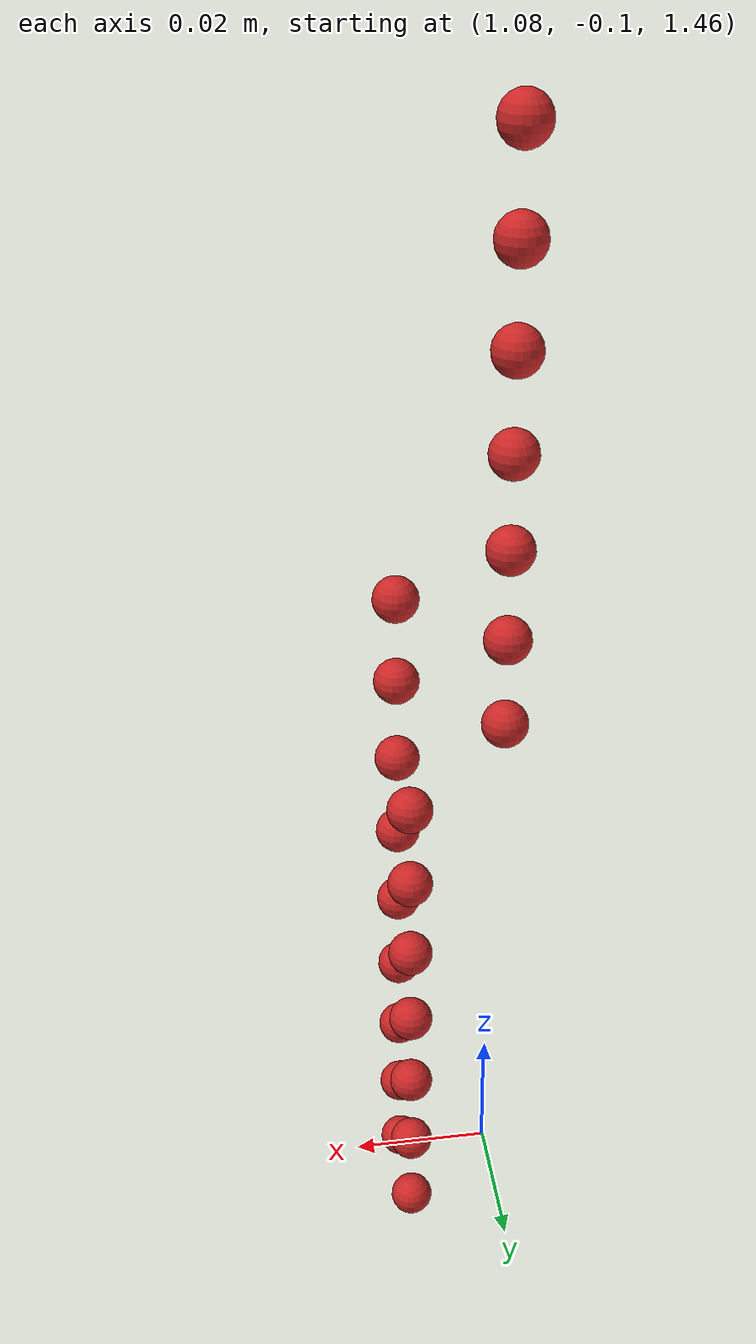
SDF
<sdf version="1.4">
 <world name="default">
  <model name="ground_plane">
   <static>1</static>
   <link name="link">
    <collision name="collision">
     <geometry><plane><normal>0 0 1</normal><size>100 100</size></plane></geometry>
     <surface><friction><ode><mu>100</mu><mu2>50</mu2></ode></friction></surface>
    </collision>
    <visual name="visual">
     <cast_shadows>0</cast_shadows>
     <geometry><plane><normal>0 0 1</normal><size>100 100</size></plane></geometry>
     <material>
      <script><uri>file://media/materials/scripts/gazebo.material</uri><name>Gazebo/Grey</name></script>
     </material>
    </visual>
    <velocity_decay><linear>0</linear><angular>0</angular></velocity_decay>
   </link>
  </model>
  <model name="sphere1">
   <pose>0.546760 -0.048781 0.732288 0 0 0</pose>
   <link name="link">
    <pose>0.546760 -0.048781 0.732288 0 0 0</pose>
    <inertial>
     <mass>0.001</mass>
     <inertia>
      <ixx>0.004</ixx>
      <ixy>0.000000</ixy>
      <ixz>0.000000</ixz>
      <iyy>0.004</iyy>
      <iyz>0.000000</iyz>
      <izz>0.004</izz>
     </inertia>
    </inertial>
    <collision name="collision">
     <surface>
      <contact><ode><kp>10000000000.000000</kp><kd>1</kd></ode></contact>
      <friction><ode><mu>0.01</mu><mu2>0.01</mu2></ode></friction>
     </surface>
     <geometry><sphere><radius>0.003</radius></sphere></geometry>
    </collision>
    <visual name="visual">
     <geometry><sphere><radius>0.003</radius></sphere></geometry>
     <material>
      <script><uri>file://media/materials/scripts/gazebo.material</uri><name>Gazebo/Red</name></script>
     </material>
    </visual>
   </link>
  </model>
  <model name="sphere5">
   <pose>0.546760 -0.042781 0.732288 0 0 0</pose>
   <link name="link">
    <pose>0.546760 -0.042781 0.732288 0 0 0</pose>
    <inertial>
     <mass>0.001</mass>
     <inertia>
      <ixx>0.004</ixx>
      <ixy>0.000000</ixy>
      <ixz>0.000000</ixz>
      <iyy>0.004</iyy>
      <iyz>0.000000</iyz>
      <izz>0.004</izz>
     </inertia>
    </inertial>
    <collision name="collision">
     <surface>
      <contact><ode><kp>10000000000.000000</kp><kd>1</kd></ode></contact>
      <friction><ode><mu>0.01</mu><mu2>0.01</mu2></ode></friction>
     </surface>
     <geometry><sphere><radius>0.003</radius></sphere></geometry>
    </collision>
    <visual name="visual">
     <geometry><sphere><radius>0.003</radius></sphere></geometry>
     <material>
      <script><uri>file://media/materials/scripts/gazebo.material</uri><name>Gazebo/Red</name></script>
     </material>
    </visual>
   </link>
  </model>
  <model name="sphere17">
   <pose>0.546760 -0.048781 0.738288 0 0 0</pose>
   <link name="link">
    <pose>0.546760 -0.048781 0.738288 0 0 0</pose>
    <inertial>
     <mass>0.001</mass>
     <inertia>
      <ixx>0.004</ixx>
      <ixy>0.000000</ixy>
      <ixz>0.000000</ixz>
      <iyy>0.004</iyy>
      <iyz>0.000000</iyz>
      <izz>0.004</izz>
     </inertia>
    </inertial>
    <collision name="collision">
     <surface>
      <contact><ode><kp>10000000000.000000</kp><kd>1</kd></ode></contact>
      <friction><ode><mu>0.01</mu><mu2>0.01</mu2></ode></friction>
     </surface>
     <geometry><sphere><radius>0.003</radius></sphere></geometry>
    </collision>
    <visual name="visual">
     <geometry><sphere><radius>0.003</radius></sphere></geometry>
     <material>
      <script><uri>file://media/materials/scripts/gazebo.material</uri><name>Gazebo/Red</name></script>
     </material>
    </visual>
   </link>
  </model>
  <model name="sphere21">
   <pose>0.546760 -0.042781 0.738288 0 0 0</pose>
   <link name="link">
    <pose>0.546760 -0.042781 0.738288 0 0 0</pose>
    <inertial>
     <mass>0.001</mass>
     <inertia>
      <ixx>0.004</ixx>
      <ixy>0.000000</ixy>
      <ixz>0.000000</ixz>
      <iyy>0.004</iyy>
      <iyz>0.000000</iyz>
      <izz>0.004</izz>
     </inertia>
    </inertial>
    <collision name="collision">
     <surface>
      <contact><ode><kp>10000000000.000000</kp><kd>1</kd></ode></contact>
      <friction><ode><mu>0.01</mu><mu2>0.01</mu2></ode></friction>
     </surface>
     <geometry><sphere><radius>0.003</radius></sphere></geometry>
    </collision>
    <visual name="visual">
     <geometry><sphere><radius>0.003</radius></sphere></geometry>
     <material>
      <script><uri>file://media/materials/scripts/gazebo.material</uri><name>Gazebo/Red</name></script>
     </material>
    </visual>
   </link>
  </model>
  <model name="sphere33">
   <pose>0.546760 -0.048781 0.744288 0 0 0</pose>
   <link name="link">
    <pose>0.546760 -0.048781 0.744288 0 0 0</pose>
    <inertial>
     <mass>0.001</mass>
     <inertia>
      <ixx>0.004</ixx>
      <ixy>0.000000</ixy>
      <ixz>0.000000</ixz>
      <iyy>0.004</iyy>
      <iyz>0.000000</iyz>
      <izz>0.004</izz>
     </inertia>
    </inertial>
    <collision name="collision">
     <surface>
      <contact><ode><kp>10000000000.000000</kp><kd>1</kd></ode></contact>
      <friction><ode><mu>0.01</mu><mu2>0.01</mu2></ode></friction>
     </surface>
     <geometry><sphere><radius>0.003</radius></sphere></geometry>
    </collision>
    <visual name="visual">
     <geometry><sphere><radius>0.003</radius></sphere></geometry>
     <material>
      <script><uri>file://media/materials/scripts/gazebo.material</uri><name>Gazebo/Red</name></script>
     </material>
    </visual>
   </link>
  </model>
  <model name="sphere37">
   <pose>0.546760 -0.042781 0.744288 0 0 0</pose>
   <link name="link">
    <pose>0.546760 -0.042781 0.744288 0 0 0</pose>
    <inertial>
     <mass>0.001</mass>
     <inertia>
      <ixx>0.004</ixx>
      <ixy>0.000000</ixy>
      <ixz>0.000000</ixz>
      <iyy>0.004</iyy>
      <iyz>0.000000</iyz>
      <izz>0.004</izz>
     </inertia>
    </inertial>
    <collision name="collision">
     <surface>
      <contact><ode><kp>10000000000.000000</kp><kd>1</kd></ode></contact>
      <friction><ode><mu>0.01</mu><mu2>0.01</mu2></ode></friction>
     </surface>
     <geometry><sphere><radius>0.003</radius></sphere></geometry>
    </collision>
    <visual name="visual">
     <geometry><sphere><radius>0.003</radius></sphere></geometry>
     <material>
      <script><uri>file://media/materials/scripts/gazebo.material</uri><name>Gazebo/Red</name></script>
     </material>
    </visual>
   </link>
  </model>
  <model name="sphere49">
   <pose>0.546760 -0.048781 0.750288 0 0 0</pose>
   <link name="link">
    <pose>0.546760 -0.048781 0.750288 0 0 0</pose>
    <inertial>
     <mass>0.001</mass>
     <inertia>
      <ixx>0.004</ixx>
      <ixy>0.000000</ixy>
      <ixz>0.000000</ixz>
      <iyy>0.004</iyy>
      <iyz>0.000000</iyz>
      <izz>0.004</izz>
     </inertia>
    </inertial>
    <collision name="collision">
     <surface>
      <contact><ode><kp>10000000000.000000</kp><kd>1</kd></ode></contact>
      <friction><ode><mu>0.01</mu><mu2>0.01</mu2></ode></friction>
     </surface>
     <geometry><sphere><radius>0.003</radius></sphere></geometry>
    </collision>
    <visual name="visual">
     <geometry><sphere><radius>0.003</radius></sphere></geometry>
     <material>
      <script><uri>file://media/materials/scripts/gazebo.material</uri><name>Gazebo/Red</name></script>
     </material>
    </visual>
   </link>
  </model>
  <model name="sphere53">
   <pose>0.546760 -0.042781 0.750288 0 0 0</pose>
   <link name="link">
    <pose>0.546760 -0.042781 0.750288 0 0 0</pose>
    <inertial>
     <mass>0.001</mass>
     <inertia>
      <ixx>0.004</ixx>
      <ixy>0.000000</ixy>
      <ixz>0.000000</ixz>
      <iyy>0.004</iyy>
      <iyz>0.000000</iyz>
      <izz>0.004</izz>
     </inertia>
    </inertial>
    <collision name="collision">
     <surface>
      <contact><ode><kp>10000000000.000000</kp><kd>1</kd></ode></contact>
      <friction><ode><mu>0.01</mu><mu2>0.01</mu2></ode></friction>
     </surface>
     <geometry><sphere><radius>0.003</radius></sphere></geometry>
    </collision>
    <visual name="visual">
     <geometry><sphere><radius>0.003</radius></sphere></geometry>
     <material>
      <script><uri>file://media/materials/scripts/gazebo.material</uri><name>Gazebo/Red</name></script>
     </material>
    </visual>
   </link>
  </model>
  <model name="sphere65">
   <pose>0.546760 -0.048781 0.756288 0 0 0</pose>
   <link name="link">
    <pose>0.546760 -0.048781 0.756288 0 0 0</pose>
    <inertial>
     <mass>0.001</mass>
     <inertia>
      <ixx>0.004</ixx>
      <ixy>0.000000</ixy>
      <ixz>0.000000</ixz>
      <iyy>0.004</iyy>
      <iyz>0.000000</iyz>
      <izz>0.004</izz>
     </inertia>
    </inertial>
    <collision name="collision">
     <surface>
      <contact><ode><kp>10000000000.000000</kp><kd>1</kd></ode></contact>
      <friction><ode><mu>0.01</mu><mu2>0.01</mu2></ode></friction>
     </surface>
     <geometry><sphere><radius>0.003</radius></sphere></geometry>
    </collision>
    <visual name="visual">
     <geometry><sphere><radius>0.003</radius></sphere></geometry>
     <material>
      <script><uri>file://media/materials/scripts/gazebo.material</uri><name>Gazebo/Red</name></script>
     </material>
    </visual>
   </link>
  </model>
  <model name="sphere69">
   <pose>0.546760 -0.042781 0.756288 0 0 0</pose>
   <link name="link">
    <pose>0.546760 -0.042781 0.756288 0 0 0</pose>
    <inertial>
     <mass>0.001</mass>
     <inertia>
      <ixx>0.004</ixx>
      <ixy>0.000000</ixy>
      <ixz>0.000000</ixz>
      <iyy>0.004</iyy>
      <iyz>0.000000</iyz>
      <izz>0.004</izz>
     </inertia>
    </inertial>
    <collision name="collision">
     <surface>
      <contact><ode><kp>10000000000.000000</kp><kd>1</kd></ode></contact>
      <friction><ode><mu>0.01</mu><mu2>0.01</mu2></ode></friction>
     </surface>
     <geometry><sphere><radius>0.003</radius></sphere></geometry>
    </collision>
    <visual name="visual">
     <geometry><sphere><radius>0.003</radius></sphere></geometry>
     <material>
      <script><uri>file://media/materials/scripts/gazebo.material</uri><name>Gazebo/Red</name></script>
     </material>
    </visual>
   </link>
  </model>
  <model name="sphere81">
   <pose>0.546760 -0.048781 0.762288 0 0 0</pose>
   <link name="link">
    <pose>0.546760 -0.048781 0.762288 0 0 0</pose>
    <inertial>
     <mass>0.001</mass>
     <inertia>
      <ixx>0.004</ixx>
      <ixy>0.000000</ixy>
      <ixz>0.000000</ixz>
      <iyy>0.004</iyy>
      <iyz>0.000000</iyz>
      <izz>0.004</izz>
     </inertia>
    </inertial>
    <collision name="collision">
     <surface>
      <contact><ode><kp>10000000000.000000</kp><kd>1</kd></ode></contact>
      <friction><ode><mu>0.01</mu><mu2>0.01</mu2></ode></friction>
     </surface>
     <geometry><sphere><radius>0.003</radius></sphere></geometry>
    </collision>
    <visual name="visual">
     <geometry><sphere><radius>0.003</radius></sphere></geometry>
     <material>
      <script><uri>file://media/materials/scripts/gazebo.material</uri><name>Gazebo/Red</name></script>
     </material>
    </visual>
   </link>
  </model>
  <model name="sphere85">
   <pose>0.546760 -0.042781 0.762288 0 0 0</pose>
   <link name="link">
    <pose>0.546760 -0.042781 0.762288 0 0 0</pose>
    <inertial>
     <mass>0.001</mass>
     <inertia>
      <ixx>0.004</ixx>
      <ixy>0.000000</ixy>
      <ixz>0.000000</ixz>
      <iyy>0.004</iyy>
      <iyz>0.000000</iyz>
      <izz>0.004</izz>
     </inertia>
    </inertial>
    <collision name="collision">
     <surface>
      <contact><ode><kp>10000000000.000000</kp><kd>1</kd></ode></contact>
      <friction><ode><mu>0.01</mu><mu2>0.01</mu2></ode></friction>
     </surface>
     <geometry><sphere><radius>0.003</radius></sphere></geometry>
    </collision>
    <visual name="visual">
     <geometry><sphere><radius>0.003</radius></sphere></geometry>
     <material>
      <script><uri>file://media/materials/scripts/gazebo.material</uri><name>Gazebo/Red</name></script>
     </material>
    </visual>
   </link>
  </model>
  <model name="sphere97">
   <pose>0.546760 -0.048781 0.768288 0 0 0</pose>
   <link name="link">
    <pose>0.546760 -0.048781 0.768288 0 0 0</pose>
    <inertial>
     <mass>0.001</mass>
     <inertia>
      <ixx>0.004</ixx>
      <ixy>0.000000</ixy>
      <ixz>0.000000</ixz>
      <iyy>0.004</iyy>
      <iyz>0.000000</iyz>
      <izz>0.004</izz>
     </inertia>
    </inertial>
    <collision name="collision">
     <surface>
      <contact><ode><kp>10000000000.000000</kp><kd>1</kd></ode></contact>
      <friction><ode><mu>0.01</mu><mu2>0.01</mu2></ode></friction>
     </surface>
     <geometry><sphere><radius>0.003</radius></sphere></geometry>
    </collision>
    <visual name="visual">
     <geometry><sphere><radius>0.003</radius></sphere></geometry>
     <material>
      <script><uri>file://media/materials/scripts/gazebo.material</uri><name>Gazebo/Red</name></script>
     </material>
    </visual>
   </link>
  </model>
  <model name="sphere101">
   <pose>0.546760 -0.042781 0.768288 0 0 0</pose>
   <link name="link">
    <pose>0.546760 -0.042781 0.768288 0 0 0</pose>
    <inertial>
     <mass>0.001</mass>
     <inertia>
      <ixx>0.004</ixx>
      <ixy>0.000000</ixy>
      <ixz>0.000000</ixz>
      <iyy>0.004</iyy>
      <iyz>0.000000</iyz>
      <izz>0.004</izz>
     </inertia>
    </inertial>
    <collision name="collision">
     <surface>
      <contact><ode><kp>10000000000.000000</kp><kd>1</kd></ode></contact>
      <friction><ode><mu>0.01</mu><mu2>0.01</mu2></ode></friction>
     </surface>
     <geometry><sphere><radius>0.003</radius></sphere></geometry>
    </collision>
    <visual name="visual">
     <geometry><sphere><radius>0.003</radius></sphere></geometry>
     <material>
      <script><uri>file://media/materials/scripts/gazebo.material</uri><name>Gazebo/Red</name></script>
     </material>
    </visual>
   </link>
  </model>
  <model name="sphere113">
   <pose>0.546760 -0.048781 0.774288 0 0 0</pose>
   <link name="link">
    <pose>0.546760 -0.048781 0.774288 0 0 0</pose>
    <inertial>
     <mass>0.001</mass>
     <inertia>
      <ixx>0.004</ixx>
      <ixy>0.000000</ixy>
      <ixz>0.000000</ixz>
      <iyy>0.004</iyy>
      <iyz>0.000000</iyz>
      <izz>0.004</izz>
     </inertia>
    </inertial>
    <collision name="collision">
     <surface>
      <contact><ode><kp>10000000000.000000</kp><kd>1</kd></ode></contact>
      <friction><ode><mu>0.01</mu><mu2>0.01</mu2></ode></friction>
     </surface>
     <geometry><sphere><radius>0.003</radius></sphere></geometry>
    </collision>
    <visual name="visual">
     <geometry><sphere><radius>0.003</radius></sphere></geometry>
     <material>
      <script><uri>file://media/materials/scripts/gazebo.material</uri><name>Gazebo/Red</name></script>
     </material>
    </visual>
   </link>
  </model>
  <model name="sphere116">
   <pose>0.540760 -0.042781 0.774288 0 0 0</pose>
   <link name="link">
    <pose>0.540760 -0.042781 0.774288 0 0 0</pose>
    <inertial>
     <mass>0.001</mass>
     <inertia>
      <ixx>0.004</ixx>
      <ixy>0.000000</ixy>
      <ixz>0.000000</ixz>
      <iyy>0.004</iyy>
      <iyz>0.000000</iyz>
      <izz>0.004</izz>
     </inertia>
    </inertial>
    <collision name="collision">
     <surface>
      <contact><ode><kp>10000000000.000000</kp><kd>1</kd></ode></contact>
      <friction><ode><mu>0.01</mu><mu2>0.01</mu2></ode></friction>
     </surface>
     <geometry><sphere><radius>0.003</radius></sphere></geometry>
    </collision>
    <visual name="visual">
     <geometry><sphere><radius>0.003</radius></sphere></geometry>
     <material>
      <script><uri>file://media/materials/scripts/gazebo.material</uri><name>Gazebo/Red</name></script>
     </material>
    </visual>
   </link>
  </model>
  <model name="sphere129">
   <pose>0.546760 -0.048781 0.780288 0 0 0</pose>
   <link name="link">
    <pose>0.546760 -0.048781 0.780288 0 0 0</pose>
    <inertial>
     <mass>0.001</mass>
     <inertia>
      <ixx>0.004</ixx>
      <ixy>0.000000</ixy>
      <ixz>0.000000</ixz>
      <iyy>0.004</iyy>
      <iyz>0.000000</iyz>
      <izz>0.004</izz>
     </inertia>
    </inertial>
    <collision name="collision">
     <surface>
      <contact><ode><kp>10000000000.000000</kp><kd>1</kd></ode></contact>
      <friction><ode><mu>0.01</mu><mu2>0.01</mu2></ode></friction>
     </surface>
     <geometry><sphere><radius>0.003</radius></sphere></geometry>
    </collision>
    <visual name="visual">
     <geometry><sphere><radius>0.003</radius></sphere></geometry>
     <material>
      <script><uri>file://media/materials/scripts/gazebo.material</uri><name>Gazebo/Red</name></script>
     </material>
    </visual>
   </link>
  </model>
  <model name="sphere132">
   <pose>0.540760 -0.042781 0.780288 0 0 0</pose>
   <link name="link">
    <pose>0.540760 -0.042781 0.780288 0 0 0</pose>
    <inertial>
     <mass>0.001</mass>
     <inertia>
      <ixx>0.004</ixx>
      <ixy>0.000000</ixy>
      <ixz>0.000000</ixz>
      <iyy>0.004</iyy>
      <iyz>0.000000</iyz>
      <izz>0.004</izz>
     </inertia>
    </inertial>
    <collision name="collision">
     <surface>
      <contact><ode><kp>10000000000.000000</kp><kd>1</kd></ode></contact>
      <friction><ode><mu>0.01</mu><mu2>0.01</mu2></ode></friction>
     </surface>
     <geometry><sphere><radius>0.003</radius></sphere></geometry>
    </collision>
    <visual name="visual">
     <geometry><sphere><radius>0.003</radius></sphere></geometry>
     <material>
      <script><uri>file://media/materials/scripts/gazebo.material</uri><name>Gazebo/Red</name></script>
     </material>
    </visual>
   </link>
  </model>
  <model name="sphere148">
   <pose>0.540760 -0.042781 0.786288 0 0 0</pose>
   <link name="link">
    <pose>0.540760 -0.042781 0.786288 0 0 0</pose>
    <inertial>
     <mass>0.001</mass>
     <inertia>
      <ixx>0.004</ixx>
      <ixy>0.000000</ixy>
      <ixz>0.000000</ixz>
      <iyy>0.004</iyy>
      <iyz>0.000000</iyz>
      <izz>0.004</izz>
     </inertia>
    </inertial>
    <collision name="collision">
     <surface>
      <contact><ode><kp>10000000000.000000</kp><kd>1</kd></ode></contact>
      <friction><ode><mu>0.01</mu><mu2>0.01</mu2></ode></friction>
     </surface>
     <geometry><sphere><radius>0.003</radius></sphere></geometry>
    </collision>
    <visual name="visual">
     <geometry><sphere><radius>0.003</radius></sphere></geometry>
     <material>
      <script><uri>file://media/materials/scripts/gazebo.material</uri><name>Gazebo/Red</name></script>
     </material>
    </visual>
   </link>
  </model>
  <model name="sphere164">
   <pose>0.540760 -0.042781 0.792288 0 0 0</pose>
   <link name="link">
    <pose>0.540760 -0.042781 0.792288 0 0 0</pose>
    <inertial>
     <mass>0.001</mass>
     <inertia>
      <ixx>0.004</ixx>
      <ixy>0.000000</ixy>
      <ixz>0.000000</ixz>
      <iyy>0.004</iyy>
      <iyz>0.000000</iyz>
      <izz>0.004</izz>
     </inertia>
    </inertial>
    <collision name="collision">
     <surface>
      <contact><ode><kp>10000000000.000000</kp><kd>1</kd></ode></contact>
      <friction><ode><mu>0.01</mu><mu2>0.01</mu2></ode></friction>
     </surface>
     <geometry><sphere><radius>0.003</radius></sphere></geometry>
    </collision>
    <visual name="visual">
     <geometry><sphere><radius>0.003</radius></sphere></geometry>
     <material>
      <script><uri>file://media/materials/scripts/gazebo.material</uri><name>Gazebo/Red</name></script>
     </material>
    </visual>
   </link>
  </model>
  <model name="sphere180">
   <pose>0.540760 -0.042781 0.798288 0 0 0</pose>
   <link name="link">
    <pose>0.540760 -0.042781 0.798288 0 0 0</pose>
    <inertial>
     <mass>0.001</mass>
     <inertia>
      <ixx>0.004</ixx>
      <ixy>0.000000</ixy>
      <ixz>0.000000</ixz>
      <iyy>0.004</iyy>
      <iyz>0.000000</iyz>
      <izz>0.004</izz>
     </inertia>
    </inertial>
    <collision name="collision">
     <surface>
      <contact><ode><kp>10000000000.000000</kp><kd>1</kd></ode></contact>
      <friction><ode><mu>0.01</mu><mu2>0.01</mu2></ode></friction>
     </surface>
     <geometry><sphere><radius>0.003</radius></sphere></geometry>
    </collision>
    <visual name="visual">
     <geometry><sphere><radius>0.003</radius></sphere></geometry>
     <material>
      <script><uri>file://media/materials/scripts/gazebo.material</uri><name>Gazebo/Red</name></script>
     </material>
    </visual>
   </link>
  </model>
  <model name="sphere196">
   <pose>0.540760 -0.042781 0.804288 0 0 0</pose>
   <link name="link">
    <pose>0.540760 -0.042781 0.804288 0 0 0</pose>
    <inertial>
     <mass>0.001</mass>
     <inertia>
      <ixx>0.004</ixx>
      <ixy>0.000000</ixy>
      <ixz>0.000000</ixz>
      <iyy>0.004</iyy>
      <iyz>0.000000</iyz>
      <izz>0.004</izz>
     </inertia>
    </inertial>
    <collision name="collision">
     <surface>
      <contact><ode><kp>10000000000.000000</kp><kd>1</kd></ode></contact>
      <friction><ode><mu>0.01</mu><mu2>0.01</mu2></ode></friction>
     </surface>
     <geometry><sphere><radius>0.003</radius></sphere></geometry>
    </collision>
    <visual name="visual">
     <geometry><sphere><radius>0.003</radius></sphere></geometry>
     <material>
      <script><uri>file://media/materials/scripts/gazebo.material</uri><name>Gazebo/Red</name></script>
     </material>
    </visual>
   </link>
  </model>
  <model name="sphere212">
   <pose>0.540760 -0.042781 0.810288 0 0 0</pose>
   <link name="link">
    <pose>0.540760 -0.042781 0.810288 0 0 0</pose>
    <inertial>
     <mass>0.001</mass>
     <inertia>
      <ixx>0.004</ixx>
      <ixy>0.000000</ixy>
      <ixz>0.000000</ixz>
      <iyy>0.004</iyy>
      <iyz>0.000000</iyz>
      <izz>0.004</izz>
     </inertia>
    </inertial>
    <collision name="collision">
     <surface>
      <contact><ode><kp>10000000000.000000</kp><kd>1</kd></ode></contact>
      <friction><ode><mu>0.01</mu><mu2>0.01</mu2></ode></friction>
     </surface>
     <geometry><sphere><radius>0.003</radius></sphere></geometry>
    </collision>
    <visual name="visual">
     <geometry><sphere><radius>0.003</radius></sphere></geometry>
     <material>
      <script><uri>file://media/materials/scripts/gazebo.material</uri><name>Gazebo/Red</name></script>
     </material>
    </visual>
   </link>
  </model>
 </world>
</sdf>
